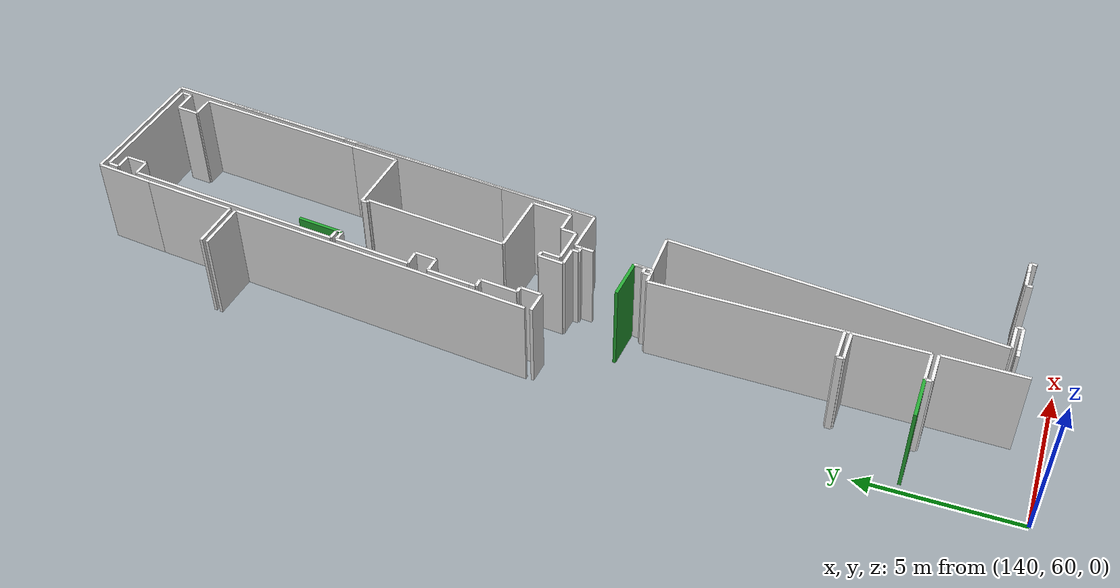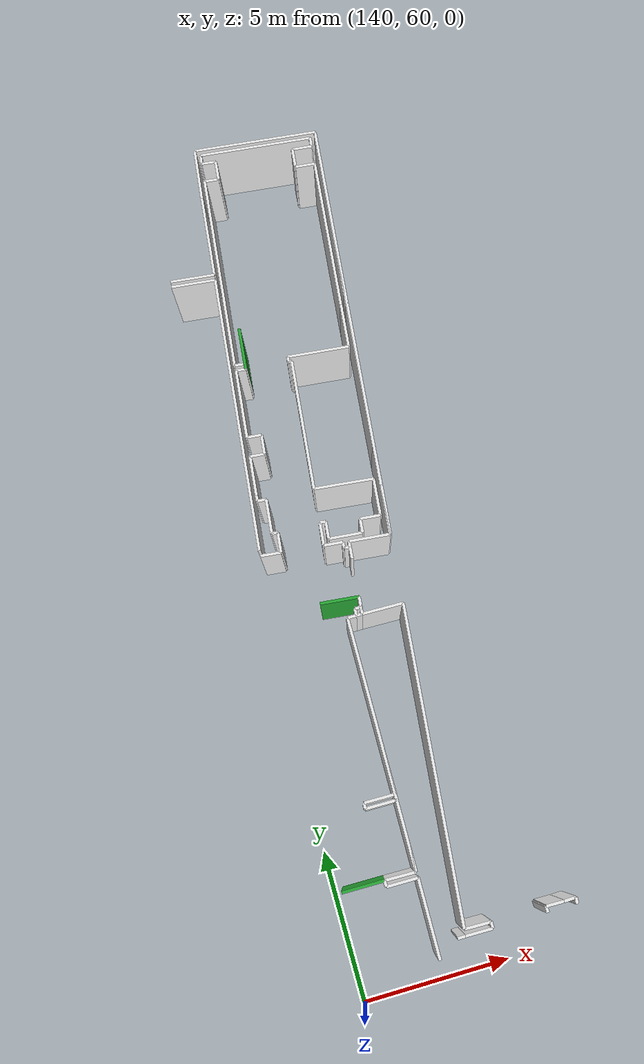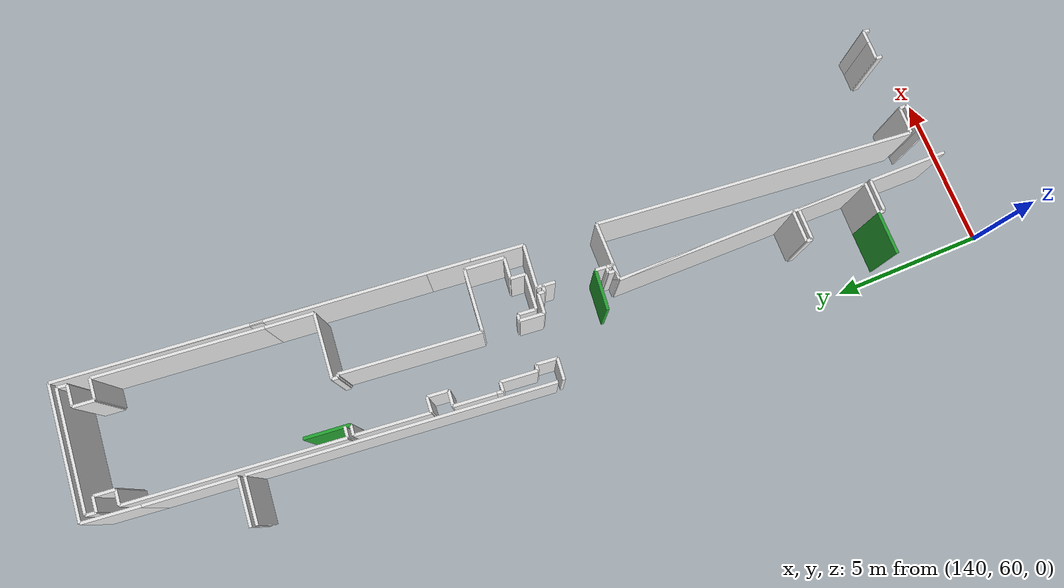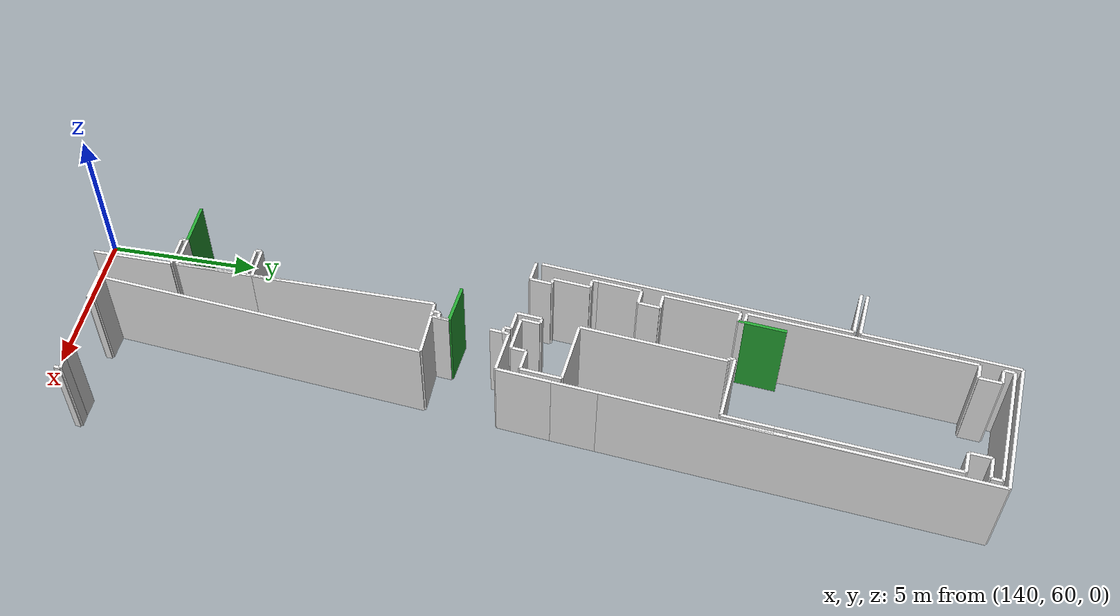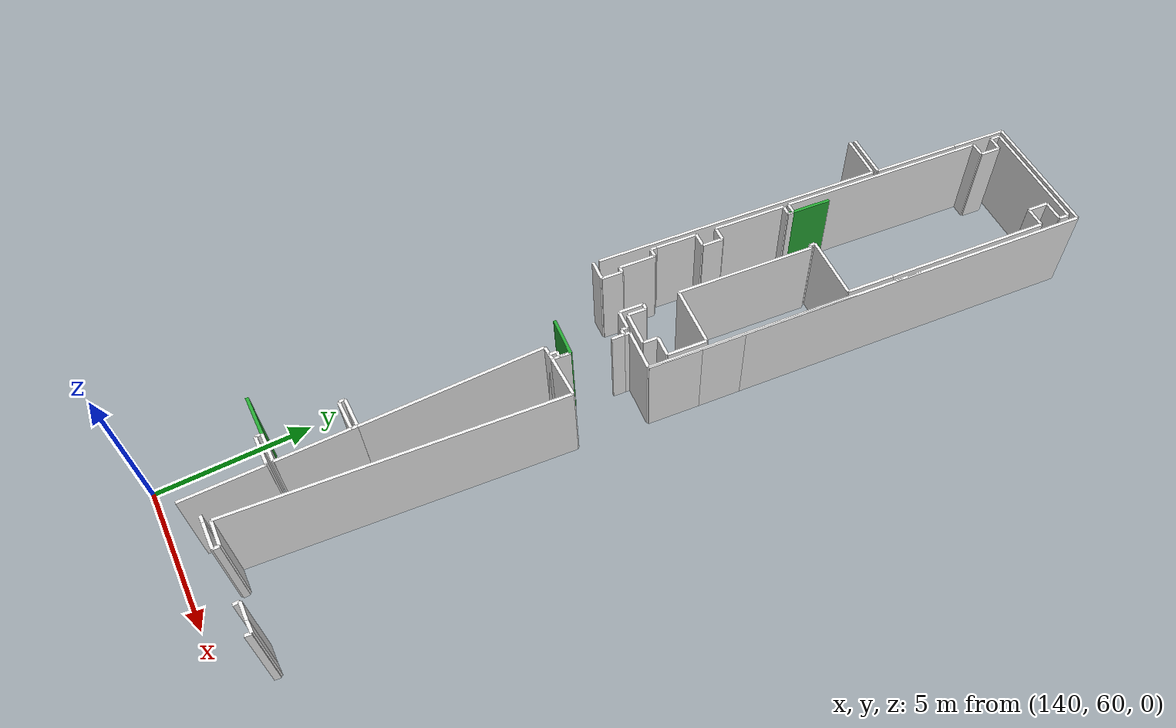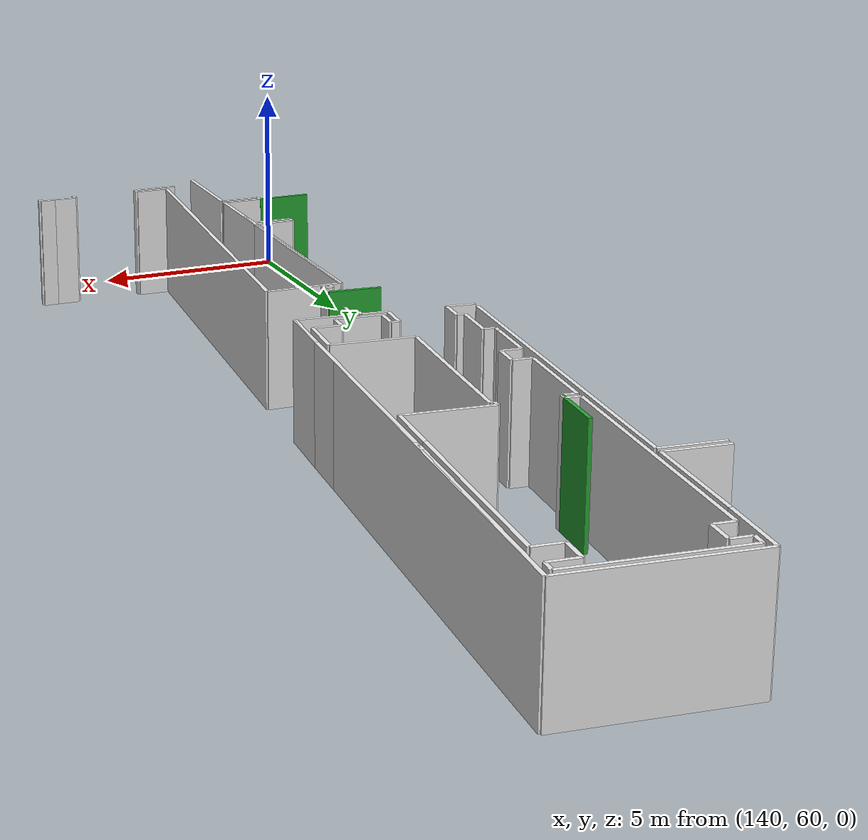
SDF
<sdf version="1.6">
 <world name="default">
  <model name="wall_141.0_63.7_1.5">
   <static>true</static>
   <pose>140.9899999999907 63.68500000005588 1.5 0 0 -0.007142735509647464</pose>
   <link name="link">
    <visual name="visual">
     <geometry><box><size>1.4000357138518724 0.1 3</size></box></geometry>
     <material>
      <script><uri>file://media/materials/scripts/gazebo.material</uri><name>Gazebo/Green</name></script>
     </material>
    </visual>
    <collision name="collision"><geometry><box><size>1.4000357138518724 0.1 3</size></box></geometry></collision>
   </link>
  </model>
  <model name="wall_141.9_82.2_1.5">
   <static>true</static>
   <pose>141.87500000017462 82.16000000014901 1.5 0 0 1.471127674057841</pose>
   <link name="link">
    <visual name="visual">
     <geometry><box><size>1.5074813432052014 0.1 3</size></box></geometry>
     <material>
      <script><uri>file://media/materials/scripts/gazebo.material</uri><name>Gazebo/Green</name></script>
     </material>
    </visual>
    <collision name="collision"><geometry><box><size>1.5074813432052014 0.1 3</size></box></geometry></collision>
   </link>
  </model>
  <model name="wall_142.7_72.7_1.5">
   <static>true</static>
   <pose>142.73499999998603 72.7050000000745 1.5 0 0 3.0426798589420723</pose>
   <link name="link">
    <visual name="visual">
     <geometry><box><size>1.3164345787456917 0.1 3</size></box></geometry>
     <material>
      <script><uri>file://media/materials/scripts/gazebo.material</uri><name>Gazebo/Green</name></script>
     </material>
    </visual>
    <collision name="collision"><geometry><box><size>1.3164345787456917 0.1 3</size></box></geometry></collision>
   </link>
  </model>
  <model name="wall_140.8_85.0_1.5">
   <static>true</static>
   <pose>140.82499999998254 85.0 1.5 0 0 -0.10286148975795871</pose>
   <link name="link">
    <visual name="visual">
     <geometry><box><size>1.5582361823586293 0.1 3</size></box></geometry>
     <material>
      <script><uri>file://media/materials/scripts/gazebo.material</uri><name>Gazebo/White</name></script>
     </material>
    </visual>
    <collision name="collision"><geometry><box><size>1.5582361823586293 0.1 3</size></box></geometry></collision>
   </link>
  </model>
  <model name="wall_141.1_80.0_1.5">
   <static>true</static>
   <pose>141.10499999998137 79.98999999999069 1.5 0 0 -1.670866626016522</pose>
   <link name="link">
    <visual name="visual">
     <geometry><box><size>9.909576176477497 0.1 3</size></box></geometry>
     <material>
      <script><uri>file://media/materials/scripts/gazebo.material</uri><name>Gazebo/White</name></script>
     </material>
    </visual>
    <collision name="collision"><geometry><box><size>9.909576176477497 0.1 3</size></box></geometry></collision>
   </link>
  </model>
  <model name="wall_142.2_63.7_1.5">
   <static>true</static>
   <pose>142.2049999999872 63.670000000158325 1.5 0 0 -0.01941503592096556</pose>
   <link name="link">
    <visual name="visual">
     <geometry><box><size>1.0301941564279975 0.1 3</size></box></geometry>
     <material>
      <script><uri>file://media/materials/scripts/gazebo.material</uri><name>Gazebo/White</name></script>
     </material>
    </visual>
    <collision name="collision"><geometry><box><size>1.0301941564279975 0.1 3</size></box></geometry></collision>
   </link>
  </model>
  <model name="wall_142.7_64.8_1.5">
   <static>true</static>
   <pose>142.73499999998603 64.81000000005588 1.5 0 0 1.5577535881510873</pose>
   <link name="link">
    <visual name="visual">
     <geometry><box><size>2.3001956436670468 0.1 3</size></box></geometry>
     <material>
      <script><uri>file://media/materials/scripts/gazebo.material</uri><name>Gazebo/White</name></script>
     </material>
    </visual>
    <collision name="collision"><geometry><box><size>2.3001956436670468 0.1 3</size></box></geometry></collision>
   </link>
  </model>
  <model name="wall_142.2_66.0_1.5">
   <static>true</static>
   <pose>142.23000000001048 65.96500000008382 1.5 0 0 3.131977565057088</pose>
   <link name="link">
    <visual name="visual">
     <geometry><box><size>1.0400480757932573 0.1 3</size></box></geometry>
     <material>
      <script><uri>file://media/materials/scripts/gazebo.material</uri><name>Gazebo/White</name></script>
     </material>
    </visual>
    <collision name="collision"><geometry><box><size>1.0400480757932573 0.1 3</size></box></geometry></collision>
   </link>
  </model>
  <model name="wall_142.9_75.4_1.5">
   <static>true</static>
   <pose>142.9100000000035 75.42999999993481 1.5 0 0 -0.09966865257760905</pose>
   <link name="link">
    <visual name="visual">
     <geometry><box><size>0.20099751243585498 0.1 3</size></box></geometry>
     <material>
      <script><uri>file://media/materials/scripts/gazebo.material</uri><name>Gazebo/White</name></script>
     </material>
    </visual>
    <collision name="collision"><geometry><box><size>0.20099751243585498 0.1 3</size></box></geometry></collision>
   </link>
  </model>
  <model name="wall_143.0_75.1_1.5">
   <static>true</static>
   <pose>142.98000000001048 75.11999999987893 1.5 0 0 -1.6704649792668482</pose>
   <link name="link">
    <visual name="visual">
     <geometry><box><size>0.6029925373596918 0.1 3</size></box></geometry>
     <material>
      <script><uri>file://media/materials/scripts/gazebo.material</uri><name>Gazebo/White</name></script>
     </material>
    </visual>
    <collision name="collision"><geometry><box><size>0.6029925373596918 0.1 3</size></box></geometry></collision>
   </link>
  </model>
  <model name="wall_143.5_74.8_1.5">
   <static>true</static>
   <pose>143.52499999999418 74.76499999989755 1.5 0 0 -0.09536204679293706</pose>
   <link name="link">
    <visual name="visual">
     <geometry><box><size>1.1552488908849852 0.1 3</size></box></geometry>
     <material>
      <script><uri>file://media/materials/scripts/gazebo.material</uri><name>Gazebo/White</name></script>
     </material>
    </visual>
    <collision name="collision"><geometry><box><size>1.1552488908849852 0.1 3</size></box></geometry></collision>
   </link>
  </model>
  <model name="wall_144.1_75.0_1.5">
   <static>true</static>
   <pose>144.125 74.9550000000745 1.5 0 0 1.469107474983833</pose>
   <link name="link">
    <visual name="visual">
     <geometry><box><size>0.4925444144680799 0.1 3</size></box></geometry>
     <material>
      <script><uri>file://media/materials/scripts/gazebo.material</uri><name>Gazebo/White</name></script>
     </material>
    </visual>
    <collision name="collision"><geometry><box><size>0.4925444144680799 0.1 3</size></box></geometry></collision>
   </link>
  </model>
  <model name="wall_144.5_75.2_1.5">
   <static>true</static>
   <pose>144.49500000002445 75.16500000003725 1.5 0 0 -0.10110337216347741</pose>
   <link name="link">
    <visual name="visual">
     <geometry><box><size>0.6935416354083843 0.1 3</size></box></geometry>
     <material>
      <script><uri>file://media/materials/scripts/gazebo.material</uri><name>Gazebo/White</name></script>
     </material>
    </visual>
    <collision name="collision"><geometry><box><size>0.6935416354083843 0.1 3</size></box></geometry></collision>
   </link>
  </model>
  <model name="wall_144.9_75.8_1.5">
   <static>true</static>
   <pose>144.90499999999884 75.77499999990687 1.5 0 0 1.4703602147900217</pose>
   <link name="link">
    <visual name="visual">
     <geometry><box><size>1.2965338407007314 0.1 3</size></box></geometry>
     <material>
      <script><uri>file://media/materials/scripts/gazebo.material</uri><name>Gazebo/White</name></script>
     </material>
    </visual>
    <collision name="collision"><geometry><box><size>1.2965338407007314 0.1 3</size></box></geometry></collision>
   </link>
  </model>
  <model name="wall_143.9_76.5_1.5">
   <static>true</static>
   <pose>143.94999999998254 76.52499999990687 1.5 0 0 3.039012801188522</pose>
   <link name="link">
    <visual name="visual">
     <geometry><box><size>2.050780339260853 0.1 3</size></box></geometry>
     <material>
      <script><uri>file://media/materials/scripts/gazebo.material</uri><name>Gazebo/White</name></script>
     </material>
    </visual>
    <collision name="collision"><geometry><box><size>2.050780339260853 0.1 3</size></box></geometry></collision>
   </link>
  </model>
  <model name="wall_143.2_78.9_1.5">
   <static>true</static>
   <pose>143.16500000000815 78.93999999994412 1.5 0 0 1.4694135127045715</pose>
   <link name="link">
    <visual name="visual">
     <geometry><box><size>4.6438453894440865 0.1 3</size></box></geometry>
     <material>
      <script><uri>file://media/materials/scripts/gazebo.material</uri><name>Gazebo/White</name></script>
     </material>
    </visual>
    <collision name="collision"><geometry><box><size>4.6438453894440865 0.1 3</size></box></geometry></collision>
   </link>
  </model>
  <model name="wall_143.4_81.3_1.5">
   <static>true</static>
   <pose>143.35000000000582 81.25499999988824 1.5 0 0 3.041924003346254</pose>
   <link name="link">
    <visual name="visual">
     <geometry><box><size>0.10049875622371936 0.1 3</size></box></geometry>
     <material>
      <script><uri>file://media/materials/scripts/gazebo.material</uri><name>Gazebo/White</name></script>
     </material>
    </visual>
    <collision name="collision"><geometry><box><size>0.10049875622371936 0.1 3</size></box></geometry></collision>
   </link>
  </model>
  <model name="wall_141.6_81.4_1.5">
   <static>true</static>
   <pose>141.63000000000466 81.43000000016764 1.5 0 0 3.0244839089037323</pose>
   <link name="link">
    <visual name="visual">
     <geometry><box><size>0.3423448553444534 0.1 3</size></box></geometry>
     <material>
      <script><uri>file://media/materials/scripts/gazebo.material</uri><name>Gazebo/White</name></script>
     </material>
    </visual>
    <collision name="collision"><geometry><box><size>0.3423448553444534 0.1 3</size></box></geometry></collision>
   </link>
  </model>
  <model name="wall_141.3_80.2_1.5">
   <static>true</static>
   <pose>141.33500000002095 80.22500000009313 1.5 0 0 -1.6724851785502959</pose>
   <link name="link">
    <visual name="visual">
     <geometry><box><size>2.4627220713902527 0.1 3</size></box></geometry>
     <material>
      <script><uri>file://media/materials/scripts/gazebo.material</uri><name>Gazebo/White</name></script>
     </material>
    </visual>
    <collision name="collision"><geometry><box><size>2.4627220713902527 0.1 3</size></box></geometry></collision>
   </link>
  </model>
  <model name="wall_141.5_79.0_1.5">
   <static>true</static>
   <pose>141.46000000002095 78.97999999998137 1.5 0 0 -0.07982998578626932</pose>
   <link name="link">
    <visual name="visual">
     <geometry><box><size>0.5015974481623489 0.1 3</size></box></geometry>
     <material>
      <script><uri>file://media/materials/scripts/gazebo.material</uri><name>Gazebo/White</name></script>
     </material>
    </visual>
    <collision name="collision"><geometry><box><size>0.5015974481623489 0.1 3</size></box></geometry></collision>
   </link>
  </model>
  <model name="wall_141.7_78.6_1.5">
   <static>true</static>
   <pose>141.67500000001746 78.61499999999069 1.5 0 0 -1.6718996985493473</pose>
   <link name="link">
    <visual name="visual">
     <geometry><box><size>0.693541635321099 0.1 3</size></box></geometry>
     <material>
      <script><uri>file://media/materials/scripts/gazebo.material</uri><name>Gazebo/White</name></script>
     </material>
    </visual>
    <collision name="collision"><geometry><box><size>0.693541635321099 0.1 3</size></box></geometry></collision>
   </link>
  </model>
  <model name="wall_141.4_78.3_1.5">
   <static>true</static>
   <pose>141.39000000001397 78.2949999999255 1.5 0 0 3.0419240014674718</pose>
   <link name="link">
    <visual name="visual">
     <geometry><box><size>0.5024937810375105 0.1 3</size></box></geometry>
     <material>
      <script><uri>file://media/materials/scripts/gazebo.material</uri><name>Gazebo/White</name></script>
     </material>
    </visual>
    <collision name="collision"><geometry><box><size>0.5024937810375105 0.1 3</size></box></geometry></collision>
   </link>
  </model>
  <model name="wall_141.1_77.6_1.5">
   <static>true</static>
   <pose>141.07000000000698 77.625 1.5 0 0 -1.671177229911867</pose>
   <link name="link">
    <visual name="visual">
     <geometry><box><size>1.3970325690805652 0.1 3</size></box></geometry>
     <material>
      <script><uri>file://media/materials/scripts/gazebo.material</uri><name>Gazebo/White</name></script>
     </material>
    </visual>
    <collision name="collision"><geometry><box><size>1.3970325690805652 0.1 3</size></box></geometry></collision>
   </link>
  </model>
  <model name="wall_141.0_76.8_1.5">
   <static>true</static>
   <pose>140.9899999999907 76.8300000000745 1.5 0 0 -1.6704649792860586</pose>
   <link name="link">
    <visual name="visual">
     <geometry><box><size>0.20099751260961132 0.1 3</size></box></geometry>
     <material>
      <script><uri>file://media/materials/scripts/gazebo.material</uri><name>Gazebo/White</name></script>
     </material>
    </visual>
    <collision name="collision"><geometry><box><size>0.20099751260961132 0.1 3</size></box></geometry></collision>
   </link>
  </model>
  <model name="wall_141.1_76.7_1.5">
   <static>true</static>
   <pose>141.13000000000466 76.71999999997206 1.5 0 0 -0.066568163827335</pose>
   <link name="link">
    <visual name="visual">
     <geometry><box><size>0.30066592761516014 0.1 3</size></box></geometry>
     <material>
      <script><uri>file://media/materials/scripts/gazebo.material</uri><name>Gazebo/White</name></script>
     </material>
    </visual>
    <collision name="collision"><geometry><box><size>0.30066592761516014 0.1 3</size></box></geometry></collision>
   </link>
  </model>
  <model name="wall_141.2_76.1_1.5">
   <static>true</static>
   <pose>141.22000000000116 76.10999999986961 1.5 0 0 -1.6704649793148743</pose>
   <link name="link">
    <visual name="visual">
     <geometry><box><size>1.2059850747251755 0.1 3</size></box></geometry>
     <material>
      <script><uri>file://media/materials/scripts/gazebo.material</uri><name>Gazebo/White</name></script>
     </material>
    </visual>
    <collision name="collision"><geometry><box><size>1.2059850747251755 0.1 3</size></box></geometry></collision>
   </link>
  </model>
  <model name="wall_141.3_75.5_1.5">
   <static>true</static>
   <pose>141.2599999999802 75.5 1.5 0 0 -0.09966865027235515</pose>
   <link name="link">
    <visual name="visual">
     <geometry><box><size>0.20099751238951993 0.1 3</size></box></geometry>
     <material>
      <script><uri>file://media/materials/scripts/gazebo.material</uri><name>Gazebo/White</name></script>
     </material>
    </visual>
    <collision name="collision"><geometry><box><size>0.20099751238951993 0.1 3</size></box></geometry></collision>
   </link>
  </model>
  <model name="wall_141.3_75.1_1.5">
   <static>true</static>
   <pose>141.32499999998254 75.14500000001863 1.5 0 0 -1.6718996984815795</pose>
   <link name="link">
    <visual name="visual">
     <geometry><box><size>0.6935416357843824 0.1 3</size></box></geometry>
     <material>
      <script><uri>file://media/materials/scripts/gazebo.material</uri><name>Gazebo/White</name></script>
     </material>
    </visual>
    <collision name="collision"><geometry><box><size>0.6935416357843824 0.1 3</size></box></geometry></collision>
   </link>
  </model>
  <model name="wall_140.9_74.8_1.5">
   <static>true</static>
   <pose>140.94000000000233 74.83499999996275 1.5 0 0 3.041924000670513</pose>
   <link name="link">
    <visual name="visual">
     <geometry><box><size>0.7034912934617817 0.1 3</size></box></geometry>
     <material>
      <script><uri>file://media/materials/scripts/gazebo.material</uri><name>Gazebo/White</name></script>
     </material>
    </visual>
    <collision name="collision"><geometry><box><size>0.7034912934617817 0.1 3</size></box></geometry></collision>
   </link>
  </model>
  <model name="wall_141.7_66.1_1.5">
   <static>true</static>
   <pose>141.7149999999965 66.06500000017695 1.5 0 0 1.5182132654251468</pose>
   <link name="link">
    <visual name="visual">
     <geometry><box><size>0.19026297584603252 0.1 3</size></box></geometry>
     <material>
      <script><uri>file://media/materials/scripts/gazebo.material</uri><name>Gazebo/White</name></script>
     </material>
    </visual>
    <collision name="collision"><geometry><box><size>0.19026297584603252 0.1 3</size></box></geometry></collision>
   </link>
  </model>
  <model name="wall_142.2_66.2_1.5">
   <static>true</static>
   <pose>142.2399999999907 66.15500000002794 1.5 0 0 -0.009615088532167242</pose>
   <link name="link">
    <visual name="visual">
     <geometry><box><size>1.0400480758514623 0.1 3</size></box></geometry>
     <material>
      <script><uri>file://media/materials/scripts/gazebo.material</uri><name>Gazebo/White</name></script>
     </material>
    </visual>
    <collision name="collision"><geometry><box><size>1.0400480758514623 0.1 3</size></box></geometry></collision>
   </link>
  </model>
  <model name="wall_142.8_69.1_1.5">
   <static>true</static>
   <pose>142.7950000000128 69.10499999998137 1.5 0 0 1.5589525489794016</pose>
   <link name="link">
    <visual name="visual">
     <geometry><box><size>5.910414537218375 0.1 3</size></box></geometry>
     <material>
      <script><uri>file://media/materials/scripts/gazebo.material</uri><name>Gazebo/White</name></script>
     </material>
    </visual>
    <collision name="collision"><geometry><box><size>5.910414537218375 0.1 3</size></box></geometry></collision>
   </link>
  </model>
  <model name="wall_143.0_72.1_1.5">
   <static>true</static>
   <pose>142.98000000001048 72.06000000005588 1.5 0 0 0.0</pose>
   <link name="link">
    <visual name="visual">
     <geometry><box><size>0.29999999998835847 0.1 3</size></box></geometry>
     <material>
      <script><uri>file://media/materials/scripts/gazebo.material</uri><name>Gazebo/White</name></script>
     </material>
    </visual>
    <collision name="collision"><geometry><box><size>0.29999999998835847 0.1 3</size></box></geometry></collision>
   </link>
  </model>
  <model name="wall_143.1_72.2_1.5">
   <static>true</static>
   <pose>143.14000000001397 72.17999999993481 1.5 0 0 1.4876550947458824</pose>
   <link name="link">
    <visual name="visual">
     <geometry><box><size>0.24083189133608532 0.1 3</size></box></geometry>
     <material>
      <script><uri>file://media/materials/scripts/gazebo.material</uri><name>Gazebo/White</name></script>
     </material>
    </visual>
    <collision name="collision"><geometry><box><size>0.24083189133608532 0.1 3</size></box></geometry></collision>
   </link>
  </model>
  <model name="wall_143.2_72.3_1.5">
   <static>true</static>
   <pose>143.25 72.28999999980442 1.5 0 0 -0.09966865260642473</pose>
   <link name="link">
    <visual name="visual">
     <geometry><box><size>0.20099751237793617 0.1 3</size></box></geometry>
     <material>
      <script><uri>file://media/materials/scripts/gazebo.material</uri><name>Gazebo/White</name></script>
     </material>
    </visual>
    <collision name="collision"><geometry><box><size>0.20099751237793617 0.1 3</size></box></geometry></collision>
   </link>
  </model>
  <model name="wall_143.4_72.5_1.5">
   <static>true</static>
   <pose>143.36999999999534 72.45999999996275 1.5 0 0 1.460139105621001</pose>
   <link name="link">
    <visual name="visual">
     <geometry><box><size>0.36221540586283607 0.1 3</size></box></geometry>
     <material>
      <script><uri>file://media/materials/scripts/gazebo.material</uri><name>Gazebo/White</name></script>
     </material>
    </visual>
    <collision name="collision"><geometry><box><size>0.36221540586283607 0.1 3</size></box></geometry></collision>
   </link>
  </model>
  <model name="wall_143.5_74.2_1.5">
   <static>true</static>
   <pose>143.54000000000815 74.15500000002794 1.5 0 0 1.4735431285193206</pose>
   <link name="link">
    <visual name="visual">
     <geometry><box><size>0.41194659816373147 0.1 3</size></box></geometry>
     <material>
      <script><uri>file://media/materials/scripts/gazebo.material</uri><name>Gazebo/White</name></script>
     </material>
    </visual>
    <collision name="collision"><geometry><box><size>0.41194659816373147 0.1 3</size></box></geometry></collision>
   </link>
  </model>
  <model name="wall_143.5_74.4_1.5">
   <static>true</static>
   <pose>143.45999999999185 74.36499999999069 1.5 0 0 3.0916342566630535</pose>
   <link name="link">
    <visual name="visual">
     <geometry><box><size>0.20024984396872697 0.1 3</size></box></geometry>
     <material>
      <script><uri>file://media/materials/scripts/gazebo.material</uri><name>Gazebo/White</name></script>
     </material>
    </visual>
    <collision name="collision"><geometry><box><size>0.20024984396872697 0.1 3</size></box></geometry></collision>
   </link>
  </model>
  <model name="wall_143.4_74.5_1.5">
   <static>true</static>
   <pose>143.36999999999534 74.47500000009313 1.5 0 0 1.4758446203474973</pose>
   <link name="link">
    <visual name="visual">
     <geometry><box><size>0.21095023106197072 0.1 3</size></box></geometry>
     <material>
      <script><uri>file://media/materials/scripts/gazebo.material</uri><name>Gazebo/White</name></script>
     </material>
    </visual>
    <collision name="collision"><geometry><box><size>0.21095023106197072 0.1 3</size></box></geometry></collision>
   </link>
  </model>
  <model name="wall_143.1_74.6_1.5">
   <static>true</static>
   <pose>143.05499999999302 74.61000000010245 1.5 0 0 3.0495458046444233</pose>
   <link name="link">
    <visual name="visual">
     <geometry><box><size>0.6527633568430243 0.1 3</size></box></geometry>
     <material>
      <script><uri>file://media/materials/scripts/gazebo.material</uri><name>Gazebo/White</name></script>
     </material>
    </visual>
    <collision name="collision"><geometry><box><size>0.6527633568430243 0.1 3</size></box></geometry></collision>
   </link>
  </model>
  <model name="wall_142.8_75.0_1.5">
   <static>true</static>
   <pose>142.76999999998952 75.04000000003725 1.5 0 0 1.471127674260511</pose>
   <link name="link">
    <visual name="visual">
     <geometry><box><size>0.8039900495059528 0.1 3</size></box></geometry>
     <material>
      <script><uri>file://media/materials/scripts/gazebo.material</uri><name>Gazebo/White</name></script>
     </material>
    </visual>
    <collision name="collision"><geometry><box><size>0.8039900495059528 0.1 3</size></box></geometry></collision>
   </link>
  </model>
  <model name="wall_143.3_81.4_1.5">
   <static>true</static>
   <pose>143.30499999999302 81.35499999998137 1.5 0 0 1.5182132652482727</pose>
   <link name="link">
    <visual name="visual">
     <geometry><box><size>0.19026297631410952 0.1 3</size></box></geometry>
     <material>
      <script><uri>file://media/materials/scripts/gazebo.material</uri><name>Gazebo/White</name></script>
     </material>
    </visual>
    <collision name="collision"><geometry><box><size>0.19026297631410952 0.1 3</size></box></geometry></collision>
   </link>
  </model>
  <model name="wall_144.4_81.3_1.5">
   <static>true</static>
   <pose>144.38000000000466 81.34500000020489 1.5 0 0 -0.0978176596774659</pose>
   <link name="link">
    <visual name="visual">
     <geometry><box><size>2.1502790516684445 0.1 3</size></box></geometry>
     <material>
      <script><uri>file://media/materials/scripts/gazebo.material</uri><name>Gazebo/White</name></script>
     </material>
    </visual>
    <collision name="collision"><geometry><box><size>2.1502790516684445 0.1 3</size></box></geometry></collision>
   </link>
  </model>
  <model name="wall_145.5_82.0_1.5">
   <static>true</static>
   <pose>145.52999999999884 82.03000000002794 1.5 0 0 1.4698745421188324</pose>
   <link name="link">
    <visual name="visual">
     <geometry><box><size>1.5880806020966798 0.1 3</size></box></geometry>
     <material>
      <script><uri>file://media/materials/scripts/gazebo.material</uri><name>Gazebo/White</name></script>
     </material>
    </visual>
    <collision name="collision"><geometry><box><size>1.5880806020966798 0.1 3</size></box></geometry></collision>
   </link>
  </model>
  <model name="wall_145.9_85.6_1.5">
   <static>true</static>
   <pose>145.88999999998487 85.56999999983236 1.5 0 0 1.4693278202361642</pose>
   <link name="link">
    <visual name="visual">
     <geometry><box><size>5.528435583417554 0.1 3</size></box></geometry>
     <material>
      <script><uri>file://media/materials/scripts/gazebo.material</uri><name>Gazebo/White</name></script>
     </material>
    </visual>
    <collision name="collision"><geometry><box><size>5.528435583417554 0.1 3</size></box></geometry></collision>
   </link>
  </model>
  <model name="wall_145.8_88.4_1.5">
   <static>true</static>
   <pose>145.81999999997788 88.35499999998137 1.5 0 0 3.041924000678746</pose>
   <link name="link">
    <visual name="visual">
     <geometry><box><size>0.7034912935197005 0.1 3</size></box></geometry>
     <material>
      <script><uri>file://media/materials/scripts/gazebo.material</uri><name>Gazebo/White</name></script>
     </material>
    </visual>
    <collision name="collision"><geometry><box><size>0.7034912935197005 0.1 3</size></box></geometry></collision>
   </link>
  </model>
  <model name="wall_145.5_88.7_1.5">
   <static>true</static>
   <pose>145.50499999997555 88.73999999999069 1.5 0 0 1.4711276742543362</pose>
   <link name="link">
    <visual name="visual">
     <geometry><box><size>0.7034912932011471 0.1 3</size></box></geometry>
     <material>
      <script><uri>file://media/materials/scripts/gazebo.material</uri><name>Gazebo/White</name></script>
     </material>
    </visual>
    <collision name="collision"><geometry><box><size>0.7034912932011471 0.1 3</size></box></geometry></collision>
   </link>
  </model>
  <model name="wall_145.9_89.1_1.5">
   <static>true</static>
   <pose>145.88999999998487 89.05499999993481 1.5 0 0 -0.0996686522524036</pose>
   <link name="link">
    <visual name="visual">
     <geometry><box><size>0.7034912934733655 0.1 3</size></box></geometry>
     <material>
      <script><uri>file://media/materials/scripts/gazebo.material</uri><name>Gazebo/White</name></script>
     </material>
    </visual>
    <collision name="collision"><geometry><box><size>0.7034912934733655 0.1 3</size></box></geometry></collision>
   </link>
  </model>
  <model name="wall_146.3_89.2_1.5">
   <static>true</static>
   <pose>146.2600000000093 89.18999999994412 1.5 0 0 1.4536875820691035</pose>
   <link name="link">
    <visual name="visual">
     <geometry><box><size>0.3423448552288355 0.1 3</size></box></geometry>
     <material>
      <script><uri>file://media/materials/scripts/gazebo.material</uri><name>Gazebo/White</name></script>
     </material>
    </visual>
    <collision name="collision"><geometry><box><size>0.3423448552288355 0.1 3</size></box></geometry></collision>
   </link>
  </model>
  <model name="wall_144.3_89.6_1.5">
   <static>true</static>
   <pose>144.2850000000035 89.55999999982305 1.5 0 0 3.041675862170233</pose>
   <link name="link">
    <visual name="visual">
     <geometry><box><size>4.01000000003936 0.1 3</size></box></geometry>
     <material>
      <script><uri>file://media/materials/scripts/gazebo.material</uri><name>Gazebo/White</name></script>
     </material>
    </visual>
    <collision name="collision"><geometry><box><size>4.01000000003936 0.1 3</size></box></geometry></collision>
   </link>
  </model>
  <model name="wall_142.3_89.6_1.5">
   <static>true</static>
   <pose>142.26999999998952 89.58999999985099 1.5 0 0 -1.6879050713518278</pose>
   <link name="link">
    <visual name="visual">
     <geometry><box><size>0.34234485522203445 0.1 3</size></box></geometry>
     <material>
      <script><uri>file://media/materials/scripts/gazebo.material</uri><name>Gazebo/White</name></script>
     </material>
    </visual>
    <collision name="collision"><geometry><box><size>0.34234485522203445 0.1 3</size></box></geometry></collision>
   </link>
  </model>
  <model name="wall_142.5_89.4_1.5">
   <static>true</static>
   <pose>142.5 89.39500000001863 1.5 0 0 -0.0996686521223214</pose>
   <link name="link">
    <visual name="visual">
     <geometry><box><size>0.5024937810375105 0.1 3</size></box></geometry>
     <material>
      <script><uri>file://media/materials/scripts/gazebo.material</uri><name>Gazebo/White</name></script>
     </material>
    </visual>
    <collision name="collision"><geometry><box><size>0.5024937810375105 0.1 3</size></box></geometry></collision>
   </link>
  </model>
  <model name="wall_142.7_89.0_1.5">
   <static>true</static>
   <pose>142.7149999999965 89.02000000001863 1.5 0 0 -1.6704649792695925</pose>
   <link name="link">
    <visual name="visual">
     <geometry><box><size>0.7034912936644975 0.1 3</size></box></geometry>
     <material>
      <script><uri>file://media/materials/scripts/gazebo.material</uri><name>Gazebo/White</name></script>
     </material>
    </visual>
    <collision name="collision"><geometry><box><size>0.7034912936644975 0.1 3</size></box></geometry></collision>
   </link>
  </model>
  <model name="wall_142.4_88.7_1.5">
   <static>true</static>
   <pose>142.42999999999302 88.69500000006519 1.5 0 0 3.0419240005453703</pose>
   <link name="link">
    <visual name="visual">
     <geometry><box><size>0.5024937810838455 0.1 3</size></box></geometry>
     <material>
      <script><uri>file://media/materials/scripts/gazebo.material</uri><name>Gazebo/White</name></script>
     </material>
    </visual>
    <collision name="collision"><geometry><box><size>0.5024937810838455 0.1 3</size></box></geometry></collision>
   </link>
  </model>
  <model name="wall_141.8_85.2_1.5">
   <static>true</static>
   <pose>141.82000000000698 85.18000000016764 1.5 0 0 -1.6721428300555992</pose>
   <link name="link">
    <visual name="visual">
     <geometry><box><size>7.1165160015990105 0.1 3</size></box></geometry>
     <material>
      <script><uri>file://media/materials/scripts/gazebo.material</uri><name>Gazebo/White</name></script>
     </material>
    </visual>
    <collision name="collision"><geometry><box><size>7.1165160015990105 0.1 3</size></box></geometry></collision>
   </link>
  </model>
  <model name="wall_141.6_81.6_1.5">
   <static>true</static>
   <pose>141.64000000001397 81.62000000011176 1.5 0 0 -0.11065722128037307</pose>
   <link name="link">
    <visual name="visual">
     <geometry><box><size>0.3622154055157262 0.1 3</size></box></geometry>
     <material>
      <script><uri>file://media/materials/scripts/gazebo.material</uri><name>Gazebo/White</name></script>
     </material>
    </visual>
    <collision name="collision"><geometry><box><size>0.3622154055157262 0.1 3</size></box></geometry></collision>
   </link>
  </model>
  <model name="wall_141.8_81.5_1.5">
   <static>true</static>
   <pose>141.80999999999767 81.50500000012107 1.5 0 0 -1.675673265652709</pose>
   <link name="link">
    <visual name="visual">
     <geometry><box><size>0.19104973169180559 0.1 3</size></box></geometry>
     <material>
      <script><uri>file://media/materials/scripts/gazebo.material</uri><name>Gazebo/White</name></script>
     </material>
    </visual>
    <collision name="collision"><geometry><box><size>0.19104973169180559 0.1 3</size></box></geometry></collision>
   </link>
  </model>
  <model name="wall_140.8_85.2_1.5">
   <static>true</static>
   <pose>140.84500000000116 85.19999999995343 1.5 0 0 -0.10286148946069955</pose>
   <link name="link">
    <visual name="visual">
     <geometry><box><size>1.558236182310815 0.1 3</size></box></geometry>
     <material>
      <script><uri>file://media/materials/scripts/gazebo.material</uri><name>Gazebo/White</name></script>
     </material>
    </visual>
    <collision name="collision"><geometry><box><size>1.558236182310815 0.1 3</size></box></geometry></collision>
   </link>
  </model>
  <model name="wall_141.8_86.6_1.5">
   <static>true</static>
   <pose>141.76999999998952 86.61499999999069 1.5 0 0 1.4707965484838321</pose>
   <link name="link">
    <visual name="visual">
     <geometry><box><size>3.005012478933323 0.1 3</size></box></geometry>
     <material>
      <script><uri>file://media/materials/scripts/gazebo.material</uri><name>Gazebo/White</name></script>
     </material>
    </visual>
    <collision name="collision"><geometry><box><size>3.005012478933323 0.1 3</size></box></geometry></collision>
   </link>
  </model>
  <model name="wall_141.7_63.6_1.5">
   <static>true</static>
   <pose>141.69000000000233 63.580000000074506 1.5 0 0 -1.5707963267948966</pose>
   <link name="link">
    <visual name="visual">
     <geometry><box><size>0.20000000018626451 0.1 3</size></box></geometry>
     <material>
      <script><uri>file://media/materials/scripts/gazebo.material</uri><name>Gazebo/White</name></script>
     </material>
    </visual>
    <collision name="collision"><geometry><box><size>0.20000000018626451 0.1 3</size></box></geometry></collision>
   </link>
  </model>
  <model name="wall_142.2_63.5_1.5">
   <static>true</static>
   <pose>142.20999999999185 63.47500000009313 1.5 0 0 -0.00961508808499551</pose>
   <link name="link">
    <visual name="visual">
     <geometry><box><size>1.04004807578878 0.1 3</size></box></geometry>
     <material>
      <script><uri>file://media/materials/scripts/gazebo.material</uri><name>Gazebo/White</name></script>
     </material>
    </visual>
    <collision name="collision"><geometry><box><size>1.04004807578878 0.1 3</size></box></geometry></collision>
   </link>
  </model>
  <model name="wall_142.7_62.2_1.5">
   <static>true</static>
   <pose>142.70999999999185 62.18500000005588 1.5 0 0 -1.5863592725219522</pose>
   <link name="link">
    <visual name="visual">
     <geometry><box><size>2.570311265494933 0.1 3</size></box></geometry>
     <material>
      <script><uri>file://media/materials/scripts/gazebo.material</uri><name>Gazebo/White</name></script>
     </material>
    </visual>
    <collision name="collision"><geometry><box><size>2.570311265494933 0.1 3</size></box></geometry></collision>
   </link>
  </model>
  <model name="wall_143.5_61.4_1.5">
   <static>true</static>
   <pose>143.52500000002328 61.37999999988824 1.5 0 0 0.0</pose>
   <link name="link">
    <visual name="visual">
     <geometry><box><size>0.25 0.1 3</size></box></geometry>
     <material>
      <script><uri>file://media/materials/scripts/gazebo.material</uri><name>Gazebo/White</name></script>
     </material>
    </visual>
    <collision name="collision"><geometry><box><size>0.25 0.1 3</size></box></geometry></collision>
   </link>
  </model>
  <model name="wall_144.1_61.4_1.5">
   <static>true</static>
   <pose>144.10000000000582 61.375 1.5 0 0 -0.011110653649716558</pose>
   <link name="link">
    <visual name="visual">
     <geometry><box><size>0.9000555538035779 0.1 3</size></box></geometry>
     <material>
      <script><uri>file://media/materials/scripts/gazebo.material</uri><name>Gazebo/White</name></script>
     </material>
    </visual>
    <collision name="collision"><geometry><box><size>0.9000555538035779 0.1 3</size></box></geometry></collision>
   </link>
  </model>
  <model name="wall_147.3_61.4_1.5">
   <static>true</static>
   <pose>147.32500000001164 61.449999999953434 1.5 0 0 1.4219063788438384</pose>
   <link name="link">
    <visual name="visual">
     <geometry><box><size>0.2022374838894058 0.1 3</size></box></geometry>
     <material>
      <script><uri>file://media/materials/scripts/gazebo.material</uri><name>Gazebo/White</name></script>
     </material>
    </visual>
    <collision name="collision"><geometry><box><size>0.2022374838894058 0.1 3</size></box></geometry></collision>
   </link>
  </model>
  <model name="wall_147.1_61.5_1.5">
   <static>true</static>
   <pose>147.14000000001397 61.544999999925494 1.5 0 0 -3.116597860530772</pose>
   <link name="link">
    <visual name="visual">
     <geometry><box><size>0.40012498049254075 0.1 3</size></box></geometry>
     <material>
      <script><uri>file://media/materials/scripts/gazebo.material</uri><name>Gazebo/White</name></script>
     </material>
    </visual>
    <collision name="collision"><geometry><box><size>0.40012498049254075 0.1 3</size></box></geometry></collision>
   </link>
  </model>
  <model name="wall_146.6_61.5_1.5">
   <static>true</static>
   <pose>146.64499999998952 61.544999999925494 1.5 0 0 3.1246451241628583</pose>
   <link name="link">
    <visual name="visual">
     <geometry><box><size>0.590084739699097 0.1 3</size></box></geometry>
     <material>
      <script><uri>file://media/materials/scripts/gazebo.material</uri><name>Gazebo/White</name></script>
     </material>
    </visual>
    <collision name="collision"><geometry><box><size>0.590084739699097 0.1 3</size></box></geometry></collision>
   </link>
  </model>
  <model name="wall_146.3_61.4_1.5">
   <static>true</static>
   <pose>146.34999999997672 61.449999999953434 1.5 0 0 -1.5707963267948966</pose>
   <link name="link">
    <visual name="visual">
     <geometry><box><size>0.19999999972060323 0.1 3</size></box></geometry>
     <material>
      <script><uri>file://media/materials/scripts/gazebo.material</uri><name>Gazebo/White</name></script>
     </material>
    </visual>
    <collision name="collision"><geometry><box><size>0.19999999972060323 0.1 3</size></box></geometry></collision>
   </link>
  </model>
  <model name="wall_144.5_61.5_1.5">
   <static>true</static>
   <pose>144.54999999998836 61.46999999997206 1.5 0 0 1.5707963267948966</pose>
   <link name="link">
    <visual name="visual">
     <geometry><box><size>0.19999999972060323 0.1 3</size></box></geometry>
     <material>
      <script><uri>file://media/materials/scripts/gazebo.material</uri><name>Gazebo/White</name></script>
     </material>
    </visual>
    <collision name="collision"><geometry><box><size>0.19999999972060323 0.1 3</size></box></geometry></collision>
   </link>
  </model>
  <model name="wall_144.1_61.6_1.5">
   <static>true</static>
   <pose>144.1149999999907 61.579999999841675 1.5 0 0 3.1186081961268197</pose>
   <link name="link">
    <visual name="visual">
     <geometry><box><size>0.8702298546893473 0.1 3</size></box></geometry>
     <material>
      <script><uri>file://media/materials/scripts/gazebo.material</uri><name>Gazebo/White</name></script>
     </material>
    </visual>
    <collision name="collision"><geometry><box><size>0.8702298546893473 0.1 3</size></box></geometry></collision>
   </link>
  </model>
  <model name="wall_144.2_66.8_1.5">
   <static>true</static>
   <pose>144.20999999999185 66.81499999994412 1.5 0 0 1.469706682461873</pose>
   <link name="link">
    <visual name="visual">
     <geometry><box><size>10.503623184591495 0.1 3</size></box></geometry>
     <material>
      <script><uri>file://media/materials/scripts/gazebo.material</uri><name>Gazebo/White</name></script>
     </material>
    </visual>
    <collision name="collision"><geometry><box><size>10.503623184591495 0.1 3</size></box></geometry></collision>
   </link>
  </model>
  <model name="wall_144.0_72.1_1.5">
   <static>true</static>
   <pose>144.0350000000035 72.05000000004657 1.5 0 0 3.1274092075850195</pose>
   <link name="link">
    <visual name="visual">
     <geometry><box><size>1.4101418368123546 0.1 3</size></box></geometry>
     <material>
      <script><uri>file://media/materials/scripts/gazebo.material</uri><name>Gazebo/White</name></script>
     </material>
    </visual>
    <collision name="collision"><geometry><box><size>1.4101418368123546 0.1 3</size></box></geometry></collision>
   </link>
  </model>
  <model name="wall_143.3_72.2_1.5">
   <static>true</static>
   <pose>143.3399999999965 72.1699999999255 1.5 0 0 1.4801364396657184</pose>
   <link name="link">
    <visual name="visual">
     <geometry><box><size>0.22090722008046232 0.1 3</size></box></geometry>
     <material>
      <script><uri>file://media/materials/scripts/gazebo.material</uri><name>Gazebo/White</name></script>
     </material>
    </visual>
    <collision name="collision"><geometry><box><size>0.22090722008046232 0.1 3</size></box></geometry></collision>
   </link>
  </model>
  <model name="wall_143.6_74.5_1.5">
   <static>true</static>
   <pose>143.57000000000698 74.45499999984168 1.5 0 0 1.4659193879370842</pose>
   <link name="link">
    <visual name="visual">
     <geometry><box><size>0.19104973169180559 0.1 3</size></box></geometry>
     <material>
      <script><uri>file://media/materials/scripts/gazebo.material</uri><name>Gazebo/White</name></script>
     </material>
    </visual>
    <collision name="collision"><geometry><box><size>0.19104973169180559 0.1 3</size></box></geometry></collision>
   </link>
  </model>
  <model name="wall_144.3_74.5_1.5">
   <static>true</static>
   <pose>144.27999999999884 74.47999999998137 1.5 0 0 -0.09966865225652011</pose>
   <link name="link">
    <visual name="visual">
     <geometry><box><size>1.4069825868888122 0.1 3</size></box></geometry>
     <material>
      <script><uri>file://media/materials/scripts/gazebo.material</uri><name>Gazebo/White</name></script>
     </material>
    </visual>
    <collision name="collision"><geometry><box><size>1.4069825868888122 0.1 3</size></box></geometry></collision>
   </link>
  </model>
  <model name="wall_145.1_75.3_1.5">
   <static>true</static>
   <pose>145.06999999997788 75.2750000001397 1.5 0 0 1.4671231190540195</pose>
   <link name="link">
    <visual name="visual">
     <geometry><box><size>1.7393389548713725 0.1 3</size></box></geometry>
     <material>
      <script><uri>file://media/materials/scripts/gazebo.material</uri><name>Gazebo/White</name></script>
     </material>
    </visual>
    <collision name="collision"><geometry><box><size>1.7393389548713725 0.1 3</size></box></geometry></collision>
   </link>
  </model>
  <model name="wall_145.5_79.5_1.5">
   <static>true</static>
   <pose>145.48499999998603 79.46999999997206 1.5 0 0 1.473506851962698</pose>
   <link name="link">
    <visual name="visual">
     <geometry><box><size>6.691644042820307 0.1 3</size></box></geometry>
     <material>
      <script><uri>file://media/materials/scripts/gazebo.material</uri><name>Gazebo/White</name></script>
     </material>
    </visual>
    <collision name="collision"><geometry><box><size>6.691644042820307 0.1 3</size></box></geometry></collision>
   </link>
  </model>
  <model name="wall_145.8_83.0_1.5">
   <static>true</static>
   <pose>145.8299999999872 83.01000000000931 1.5 0 0 1.4758446205894842</pose>
   <link name="link">
    <visual name="visual">
     <geometry><box><size>0.42190046258198655 0.1 3</size></box></geometry>
     <material>
      <script><uri>file://media/materials/scripts/gazebo.material</uri><name>Gazebo/White</name></script>
     </material>
    </visual>
    <collision name="collision"><geometry><box><size>0.42190046258198655 0.1 3</size></box></geometry></collision>
   </link>
  </model>
  <model name="wall_146.2_86.4_1.5">
   <static>true</static>
   <pose>146.17999999999302 86.38000000012107 1.5 0 0 1.4667431110995115</pose>
   <link name="link">
    <visual name="visual">
     <geometry><box><size>6.354368575863701 0.1 3</size></box></geometry>
     <material>
      <script><uri>file://media/materials/scripts/gazebo.material</uri><name>Gazebo/White</name></script>
     </material>
    </visual>
    <collision name="collision"><geometry><box><size>6.354368575863701 0.1 3</size></box></geometry></collision>
   </link>
  </model>
  <model name="wall_144.3_89.8_1.5">
   <static>true</static>
   <pose>144.32000000000698 89.76500000013039 1.5 0 0 3.0392121432977204</pose>
   <link name="link">
    <visual name="visual">
     <geometry><box><size>4.403055757108741 0.1 3</size></box></geometry>
     <material>
      <script><uri>file://media/materials/scripts/gazebo.material</uri><name>Gazebo/White</name></script>
     </material>
    </visual>
    <collision name="collision"><geometry><box><size>4.403055757108741 0.1 3</size></box></geometry></collision>
   </link>
  </model>
  <model name="wall_142.0_89.1_1.5">
   <static>true</static>
   <pose>142.02499999999418 89.05000000004657 1.5 0 0 -1.682037319054423</pose>
   <link name="link">
    <visual name="visual">
     <geometry><box><size>1.8916923643498365 0.1 3</size></box></geometry>
     <material>
      <script><uri>file://media/materials/scripts/gazebo.material</uri><name>Gazebo/White</name></script>
     </material>
    </visual>
    <collision name="collision"><geometry><box><size>1.8916923643498365 0.1 3</size></box></geometry></collision>
   </link>
  </model>
  <model name="wall_145.7_82.0_1.5">
   <static>true</static>
   <pose>145.74499999999534 81.97500000009313 1.5 0 0 -1.6715773258821318</pose>
   <link name="link">
    <visual name="visual">
     <geometry><box><size>15.2071627858948 0.1 3</size></box></geometry>
     <material>
      <script><uri>file://media/materials/scripts/gazebo.material</uri><name>Gazebo/White</name></script>
     </material>
    </visual>
    <collision name="collision"><geometry><box><size>15.2071627858948 0.1 3</size></box></geometry></collision>
   </link>
  </model>
  <model name="wall_143.4_72.4_1.5">
   <static>true</static>
   <pose>143.36000000001513 72.35000000009313 1.5 0 0 -1.673877935300477</pose>
   <link name="link">
    <visual name="visual">
     <geometry><box><size>0.5830951895584008 0.1 3</size></box></geometry>
     <material>
      <script><uri>file://media/materials/scripts/gazebo.material</uri><name>Gazebo/White</name></script>
     </material>
    </visual>
    <collision name="collision"><geometry><box><size>0.5830951895584008 0.1 3</size></box></geometry></collision>
   </link>
  </model>
  <model name="wall_143.1_72.1_1.5">
   <static>true</static>
   <pose>143.0800000000163 72.06000000005588 1.5 0 0 3.141592653589793</pose>
   <link name="link">
    <visual name="visual">
     <geometry><box><size>0.5 0.1 3</size></box></geometry>
     <material>
      <script><uri>file://media/materials/scripts/gazebo.material</uri><name>Gazebo/White</name></script>
     </material>
    </visual>
    <collision name="collision"><geometry><box><size>0.5 0.1 3</size></box></geometry></collision>
   </link>
  </model>
  <model name="wall_142.8_67.9_1.5">
   <static>true</static>
   <pose>142.77499999999418 67.86000000010245 1.5 0 0 -1.5838908164257817</pose>
   <link name="link">
    <visual name="visual">
     <geometry><box><size>8.400720207127787 0.1 3</size></box></geometry>
     <material>
      <script><uri>file://media/materials/scripts/gazebo.material</uri><name>Gazebo/White</name></script>
     </material>
    </visual>
    <collision name="collision"><geometry><box><size>8.400720207127787 0.1 3</size></box></geometry></collision>
   </link>
  </model>
 </world>
</sdf>
